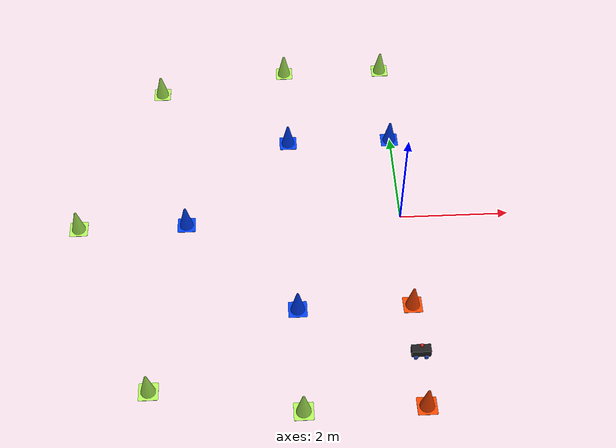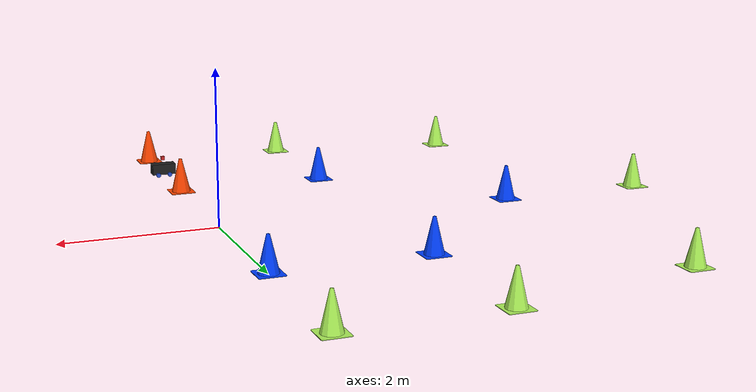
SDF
<sdf version="1.7">
 <world name="obstacles.world">
  <model name="my_bot">
   <link name="base_link">
    <inertial>
     <pose>0.078466 -0.000667 0.041672 0 -0 0</pose>
     <mass>0.90002</mass>
     <inertia>
      <ixx>0.00658185</ixx>
      <ixy>-0.000163557</ixy>
      <ixz>2.47327e-05</ixz>
      <iyy>0.0100854</iyy>
      <iyz>-2.49866e-05</iyz>
      <izz>0.0118767</izz>
     </inertia>
    </inertial>
    <collision name="base_link_fixed_joint_lump__back_left_wheel_collision">
     <pose>0 0.085 0 -1.5708 0 0</pose>
     <geometry><cylinder><length>0.03</length><radius>0.032</radius></cylinder></geometry>
     <surface><friction><ode><mu>0.018</mu><mu2>0.018</mu2></ode></friction></surface>
    </collision>
    <collision name="base_link_fixed_joint_lump__back_right_wheel_collision_1">
     <pose>-0.0128 -0.091 0 1.5708 -0 0</pose>
     <geometry><cylinder><length>0.03</length><radius>0.032</radius></cylinder></geometry>
     <surface><friction><ode><mu>0.018</mu><mu2>0.018</mu2></ode></friction></surface>
    </collision>
    <collision name="base_link_fixed_joint_lump__camera_link_collision_2">
     <pose>0.16 -0.004 0.4572 0 -0 0</pose>
     <geometry><box><size>0.05 0.05 0.05</size></box></geometry>
    </collision>
    <collision name="base_link_fixed_joint_lump__chassis_collision_3">
     <pose>0.0778 0 0.075 0 -0 0</pose>
     <geometry><box><size>0.3302 0.1524 0.15</size></box></geometry>
    </collision>
    <collision name="base_link_fixed_joint_lump__front_left_wheel_collision_4">
     <pose>0.165 0.091 0 -1.5708 0 0</pose>
     <geometry><cylinder><length>0.03</length><radius>0.032</radius></cylinder></geometry>
     <surface><friction><ode><mu>0.018</mu><mu2>0.018</mu2></ode></friction></surface>
    </collision>
    <collision name="base_link_fixed_joint_lump__front_right_wheel_collision_5">
     <pose>0.165 -0.091 0 1.5708 -0 0</pose>
     <geometry><cylinder><length>0.03</length><radius>0.032</radius></cylinder></geometry>
     <surface><friction><ode><mu>0.018</mu><mu2>0.018</mu2></ode></friction></surface>
    </collision>
    <collision name="base_link_fixed_joint_lump__laser_frame_collision_6">
     <pose>-0.02 0 0.1143 0 -0 0</pose>
     <geometry><box><size>0.1 0.1 0.1</size></box></geometry>
    </collision>
    <visual name="base_link_fixed_joint_lump__back_left_wheel_visual">
     <pose>0 0.085 0 -1.5708 0 0</pose>
     <geometry><cylinder><length>0.03</length><radius>0.032</radius></cylinder></geometry>
     <material>
      <script><name>Gazebo/Blue</name><uri>file://media/materials/scripts/gazebo.material</uri></script>
     </material>
    </visual>
    <visual name="base_link_fixed_joint_lump__back_right_wheel_visual_1">
     <pose>-0.0128 -0.091 0 1.5708 -0 0</pose>
     <geometry><cylinder><length>0.03</length><radius>0.032</radius></cylinder></geometry>
     <material>
      <script><name>Gazebo/Blue</name><uri>file://media/materials/scripts/gazebo.material</uri></script>
     </material>
    </visual>
    <visual name="base_link_fixed_joint_lump__camera_link_visual_2">
     <pose>0.08 -0.002 0.2286 0 -0 0</pose>
     <geometry><box><size>0.05 0.05 0.05</size></box></geometry>
     <material>
      <script><name>Gazebo/Red</name><uri>file://media/materials/scripts/gazebo.material</uri></script>
     </material>
    </visual>
    <visual name="base_link_fixed_joint_lump__chassis_visual_3">
     <pose>0.0778 0 0.075 0 -0 0</pose>
     <geometry><box><size>0.3302 0.1524 0.15</size></box></geometry>
     <material>
      <script><name>Gazebo/Black</name><uri>file://media/materials/scripts/gazebo.material</uri></script>
     </material>
    </visual>
    <visual name="base_link_fixed_joint_lump__front_left_wheel_visual_4">
     <pose>0.165 0.091 0 -1.5708 0 0</pose>
     <geometry><cylinder><length>0.03</length><radius>0.032</radius></cylinder></geometry>
     <material>
      <script><name>Gazebo/Blue</name><uri>file://media/materials/scripts/gazebo.material</uri></script>
     </material>
    </visual>
    <visual name="base_link_fixed_joint_lump__front_right_wheel_visual_5">
     <pose>0.165 -0.091 0 1.5708 -0 0</pose>
     <geometry><cylinder><length>0.03</length><radius>0.032</radius></cylinder></geometry>
     <material>
      <script><name>Gazebo/Blue</name><uri>file://media/materials/scripts/gazebo.material</uri></script>
     </material>
    </visual>
    <visual name="base_link_fixed_joint_lump__laser_frame_visual_6">
     <pose>-0.02 0 0.1143 0 -0 0</pose>
     <geometry><box><size>0.06 0.05 0.05</size></box></geometry>
    </visual>
    <sensor name="camera1" type="camera">
     <update_rate>30</update_rate>
     <camera name="head">
      <horizontal_fov>1.0856</horizontal_fov>
      <image><width>3280</width><height>2464</height><format>R8G8B8</format></image>
      <clip><near>0.02</near><far>300</far></clip>
      <noise><type>gaussian</type><mean>0</mean><stddev>0.007</stddev></noise>
     </camera>
     <plugin name="camera_controller" filename="libgazebo_ros_camera.so">
      <alwaysOn>1</alwaysOn>
      <updateRate>0.0</updateRate>
      <cameraName>camera1</cameraName>
      <imageTopicName>image_raw</imageTopicName>
      <cameraInfoTopicName>camera_info</cameraInfoTopicName>
      <frameName>camera_link</frameName>
      <hackBaseline>0.07</hackBaseline>
      <distortionK1>0.0</distortionK1>
      <distortionK2>0.0</distortionK2>
      <distortionK3>0.0</distortionK3>
      <distortionT1>0.0</distortionT1>
      <distortionT2>0.0</distortionT2>
     </plugin>
     <pose>0.08 -0.002 0.2286 0 -0 0</pose>
    </sensor>
    <sensor name="laser" type="ray">
     <visualize>1</visualize>
     <update_rate>10</update_rate>
     <ray>
      <scan>
       <horizontal>
        <samples>90</samples>
        <resolution>10</resolution>
        <min_angle>-1.5708</min_angle>
        <max_angle>1.5708</max_angle>
       </horizontal>
       <vertical><samples>1</samples><min_angle>0</min_angle><max_angle>0</max_angle></vertical>
      </scan>
      <range><min>0.3</min><max>5</max><resolution>0.01</resolution></range>
     </ray>
     <plugin name="laser_controller" filename="libgazebo_ros_ray_sensor.so">
      <ros><argument>~/out:=scan</argument></ros>
      <output_type>sensor_msgs/LaserScan</output_type>
      <frame_name>laser_frame</frame_name>
     </plugin>
     <pose>-0.02 0 0.1143 0 -0 0</pose>
    </sensor>
   </link>
   <static>0</static>
   <plugin name="object_controller" filename="libgazebo_ros_planar_move.so">
    <commandTopic>cmd_vel</commandTopic>
    <odometryTopic>odom</odometryTopic>
    <odometryFrame>odom</odometryFrame>
    <odometryRate>20.0</odometryRate>
    <robot_base_frame>base_link</robot_base_frame>
   </plugin>
   <pose>-0.073031 -2.99741 0.032 0 -0 0.001205</pose>
  </model>
  <model name="blue_cone">
   <link name="link">
    <inertial>
     <pose>0 0.1 0 0 -0 0</pose>
     <mass>1</mass>
     <inertia><ixx>0.1</ixx><iyy>0.1</iyy><izz>0</izz><ixy>0</ixy><ixz>0</ixz><iyz>0</iyz></inertia>
    </inertial>
    <pose>-0.104311 -0.990632 5.9e-05 0 -0 0</pose>
    <visual name="visual">
     <geometry><mesh><scale>1 1 1</scale><uri>file://model.dae</uri></mesh></geometry>
     <material>
      <shader type="pixel"><normal_map>__default__</normal_map></shader>
      <script><name>ModelPreview_1::link::visual_MATERIAL_</name><uri>__default__</uri></script>
      <ambient>0 0.251 1 0</ambient>
      <diffuse>0 0.251 1 1</diffuse>
      <specular>0 0 0 1</specular>
      <emissive>0 0 0 1</emissive>
     </material>
    </visual>
    <collision name="collision">
     <geometry>
      <mesh>
       <uri>/home/josh/robot_ws/src/open-source-autonomous-vehicle-controller/car_ros/worlds/model.dae</uri>
       <scale>1 1 1</scale>
      </mesh>
     </geometry>
     <surface>
      <friction>
       <ode><mu>1</mu><mu2>1</mu2><fdir1>0 0 0</fdir1><slip1>0</slip1><slip2>0</slip2></ode>
       <torsional>
        <coefficient>1</coefficient>
        <patch_radius>0</patch_radius>
        <surface_radius>0</surface_radius>
        <use_patch_radius>1</use_patch_radius>
        <ode><slip>0</slip></ode>
       </torsional>
      </friction>
      <bounce><restitution_coefficient>0</restitution_coefficient><threshold>1e+06</threshold></bounce>
      <contact>
       <collide_without_contact>0</collide_without_contact>
       <collide_without_contact_bitmask>1</collide_without_contact_bitmask>
       <collide_bitmask>1</collide_bitmask>
       <ode>
        <soft_cfm>0</soft_cfm>
        <soft_erp>0.2</soft_erp>
        <kp>1e+13</kp>
        <kd>1</kd>
        <max_vel>0.01</max_vel>
        <min_depth>0</min_depth>
       </ode>
       <bullet>
        <split_impulse>1</split_impulse>
        <split_impulse_penetration_threshold>-0.01</split_impulse_penetration_threshold>
        <soft_cfm>0</soft_cfm>
        <soft_erp>0.2</soft_erp>
        <kp>1e+13</kp>
        <kd>1</kd>
       </bullet>
      </contact>
     </surface>
    </collision>
    <static>1</static>
   </link>
   <static>0</static>
   <pose>-2.07352 -1.16585 -1e-06 -1e-06 -0.000562 0</pose>
  </model>
  <model name="blue_cone_clone_1">
   <link name="link">
    <inertial>
     <pose>0 0.1 0 0 -0 0</pose>
     <mass>1</mass>
     <inertia><ixx>0.1</ixx><iyy>0.1</iyy><izz>0</izz><ixy>0</ixy><ixz>0</ixz><iyz>0</iyz></inertia>
    </inertial>
    <pose>-0.104311 -0.990632 5.9e-05 0 -0 0</pose>
    <visual name="visual">
     <geometry><mesh><scale>1 1 1</scale><uri>file://model.dae</uri></mesh></geometry>
     <material>
      <shader type="pixel"><normal_map>__default__</normal_map></shader>
      <script><name>ModelPreview_1::link::visual_MATERIAL_</name><uri>__default__</uri></script>
      <ambient>0 0.251 1 0</ambient>
      <diffuse>0 0.251 1 1</diffuse>
      <specular>0 0 0 1</specular>
      <emissive>0 0 0 1</emissive>
     </material>
    </visual>
    <collision name="collision">
     <geometry>
      <mesh>
       <uri>/home/josh/robot_ws/src/open-source-autonomous-vehicle-controller/car_ros/worlds/model.dae</uri>
       <scale>1 1 1</scale>
      </mesh>
     </geometry>
     <surface>
      <friction>
       <ode><mu>1</mu><mu2>1</mu2><fdir1>0 0 0</fdir1><slip1>0</slip1><slip2>0</slip2></ode>
       <torsional>
        <coefficient>1</coefficient>
        <patch_radius>0</patch_radius>
        <surface_radius>0</surface_radius>
        <use_patch_radius>1</use_patch_radius>
        <ode><slip>0</slip></ode>
       </torsional>
      </friction>
      <bounce><restitution_coefficient>0</restitution_coefficient><threshold>1e+06</threshold></bounce>
      <contact>
       <collide_without_contact>0</collide_without_contact>
       <collide_without_contact_bitmask>1</collide_without_contact_bitmask>
       <collide_bitmask>1</collide_bitmask>
       <ode>
        <soft_cfm>0</soft_cfm>
        <soft_erp>0.2</soft_erp>
        <kp>1e+13</kp>
        <kd>1</kd>
        <max_vel>0.01</max_vel>
        <min_depth>0</min_depth>
       </ode>
       <bullet>
        <split_impulse>1</split_impulse>
        <split_impulse_penetration_threshold>-0.01</split_impulse_penetration_threshold>
        <soft_cfm>0</soft_cfm>
        <soft_erp>0.2</soft_erp>
        <kp>1e+13</kp>
        <kd>1</kd>
       </bullet>
      </contact>
     </surface>
    </collision>
    <static>1</static>
   </link>
   <static>0</static>
   <pose>-4.03429 0.82383 -2e-06 -1e-06 -0.000562 0</pose>
  </model>
  <model name="blue_cone_clone_2">
   <link name="link">
    <inertial>
     <pose>0 0.1 0 0 -0 0</pose>
     <mass>1</mass>
     <inertia><ixx>0.1</ixx><iyy>0.1</iyy><izz>0</izz><ixy>0</ixy><ixz>0</ixz><iyz>0</iyz></inertia>
    </inertial>
    <pose>-0.104311 -0.990632 5.9e-05 0 -0 0</pose>
    <visual name="visual">
     <geometry><mesh><scale>1 1 1</scale><uri>file://model.dae</uri></mesh></geometry>
     <material>
      <shader type="pixel"><normal_map>__default__</normal_map></shader>
      <script><name>ModelPreview_1::link::visual_MATERIAL_</name><uri>__default__</uri></script>
      <ambient>0 0.251 1 0</ambient>
      <diffuse>0 0.251 1 1</diffuse>
      <specular>0 0 0 1</specular>
      <emissive>0 0 0 1</emissive>
     </material>
    </visual>
    <collision name="collision">
     <geometry>
      <mesh>
       <uri>/home/josh/robot_ws/src/open-source-autonomous-vehicle-controller/car_ros/worlds/model.dae</uri>
       <scale>1 1 1</scale>
      </mesh>
     </geometry>
     <surface>
      <friction>
       <ode><mu>1</mu><mu2>1</mu2><fdir1>0 0 0</fdir1><slip1>0</slip1><slip2>0</slip2></ode>
       <torsional>
        <coefficient>1</coefficient>
        <patch_radius>0</patch_radius>
        <surface_radius>0</surface_radius>
        <use_patch_radius>1</use_patch_radius>
        <ode><slip>0</slip></ode>
       </torsional>
      </friction>
      <bounce><restitution_coefficient>0</restitution_coefficient><threshold>1e+06</threshold></bounce>
      <contact>
       <collide_without_contact>0</collide_without_contact>
       <collide_without_contact_bitmask>1</collide_without_contact_bitmask>
       <collide_bitmask>1</collide_bitmask>
       <ode>
        <soft_cfm>0</soft_cfm>
        <soft_erp>0.2</soft_erp>
        <kp>1e+13</kp>
        <kd>1</kd>
        <max_vel>0.01</max_vel>
        <min_depth>0</min_depth>
       </ode>
       <bullet>
        <split_impulse>1</split_impulse>
        <split_impulse_penetration_threshold>-0.01</split_impulse_penetration_threshold>
        <soft_cfm>0</soft_cfm>
        <soft_erp>0.2</soft_erp>
        <kp>1e+13</kp>
        <kd>1</kd>
       </bullet>
      </contact>
     </surface>
    </collision>
    <static>1</static>
   </link>
   <static>0</static>
   <pose>-2.07352 2.82004 -1e-05 1e-06 -0.000562 -0</pose>
  </model>
  <model name="blue_cone_clone_2_clone">
   <link name="link">
    <inertial>
     <pose>0 0.1 0 0 -0 0</pose>
     <mass>1</mass>
     <inertia><ixx>0.1</ixx><iyy>0.1</iyy><izz>0</izz><ixy>0</ixy><ixz>0</ixz><iyz>0</iyz></inertia>
    </inertial>
    <pose>-0.104311 -0.990632 5.9e-05 0 -0 0</pose>
    <visual name="visual">
     <geometry><mesh><scale>1 1 1</scale><uri>file://model.dae</uri></mesh></geometry>
     <material>
      <shader type="pixel"><normal_map>__default__</normal_map></shader>
      <script><name>ModelPreview_1::link::visual_MATERIAL_</name><uri>__default__</uri></script>
      <ambient>0 0.251 1 0</ambient>
      <diffuse>0 0.251 1 1</diffuse>
      <specular>0 0 0 1</specular>
      <emissive>0 0 0 1</emissive>
     </material>
    </visual>
    <collision name="collision">
     <geometry>
      <mesh>
       <uri>/home/josh/robot_ws/src/open-source-autonomous-vehicle-controller/car_ros/worlds/model.dae</uri>
       <scale>1 1 1</scale>
      </mesh>
     </geometry>
     <surface>
      <friction>
       <ode><mu>1</mu><mu2>1</mu2><fdir1>0 0 0</fdir1><slip1>0</slip1><slip2>0</slip2></ode>
       <torsional>
        <coefficient>1</coefficient>
        <patch_radius>0</patch_radius>
        <surface_radius>0</surface_radius>
        <use_patch_radius>1</use_patch_radius>
        <ode><slip>0</slip></ode>
       </torsional>
      </friction>
      <bounce><restitution_coefficient>0</restitution_coefficient><threshold>1e+06</threshold></bounce>
      <contact>
       <collide_without_contact>0</collide_without_contact>
       <collide_without_contact_bitmask>1</collide_without_contact_bitmask>
       <collide_bitmask>1</collide_bitmask>
       <ode>
        <soft_cfm>0</soft_cfm>
        <soft_erp>0.2</soft_erp>
        <kp>1e+13</kp>
        <kd>1</kd>
        <max_vel>0.01</max_vel>
        <min_depth>0</min_depth>
       </ode>
       <bullet>
        <split_impulse>1</split_impulse>
        <split_impulse_penetration_threshold>-0.01</split_impulse_penetration_threshold>
        <soft_cfm>0</soft_cfm>
        <soft_erp>0.2</soft_erp>
        <kp>1e+13</kp>
        <kd>1</kd>
       </bullet>
      </contact>
     </surface>
    </collision>
    <static>1</static>
   </link>
   <static>0</static>
   <pose>-0.071507 2.82004 -1e-06 -1e-06 -0.000562 0</pose>
  </model>
  <model name="orange_cone">
   <link name="link">
    <inertial>
     <pose>0 0.1 0 0 -0 0</pose>
     <mass>1</mass>
     <inertia><ixx>0.1</ixx><iyy>0.1</iyy><izz>0</izz><ixy>0</ixy><ixz>0</ixz><iyz>0</iyz></inertia>
    </inertial>
    <pose>-0.104311 -0.990632 5.9e-05 0 -0 0</pose>
    <visual name="visual">
     <geometry><mesh><scale>1 1 1</scale><uri>file://model.dae</uri></mesh></geometry>
     <material>
      <shader type="pixel"><normal_map>__default__</normal_map></shader>
      <script><name>ModelPreview_1::link::visual_MATERIAL_</name><uri>__default__</uri></script>
      <ambient>1 0.271 0 0</ambient>
      <diffuse>1 0.271 0 1</diffuse>
      <specular>0 0 0 1</specular>
      <emissive>0 0 0 1</emissive>
     </material>
    </visual>
    <collision name="collision">
     <geometry>
      <mesh>
       <uri>/home/josh/robot_ws/src/open-source-autonomous-vehicle-controller/car_ros/worlds/model.dae</uri>
       <scale>1 1 1</scale>
      </mesh>
     </geometry>
     <surface>
      <friction>
       <ode><mu>1</mu><mu2>1</mu2><fdir1>0 0 0</fdir1><slip1>0</slip1><slip2>0</slip2></ode>
       <torsional>
        <coefficient>1</coefficient>
        <patch_radius>0</patch_radius>
        <surface_radius>0</surface_radius>
        <use_patch_radius>1</use_patch_radius>
        <ode><slip>0</slip></ode>
       </torsional>
      </friction>
      <bounce><restitution_coefficient>0</restitution_coefficient><threshold>1e+06</threshold></bounce>
      <contact>
       <collide_without_contact>0</collide_without_contact>
       <collide_without_contact_bitmask>1</collide_without_contact_bitmask>
       <collide_bitmask>1</collide_bitmask>
       <ode>
        <soft_cfm>0</soft_cfm>
        <soft_erp>0.2</soft_erp>
        <kp>1e+13</kp>
        <kd>1</kd>
        <max_vel>0.01</max_vel>
        <min_depth>0</min_depth>
       </ode>
       <bullet>
        <split_impulse>1</split_impulse>
        <split_impulse_penetration_threshold>-0.01</split_impulse_penetration_threshold>
        <soft_cfm>0</soft_cfm>
        <soft_erp>0.2</soft_erp>
        <kp>1e+13</kp>
        <kd>1</kd>
       </bullet>
      </contact>
     </surface>
    </collision>
    <static>1</static>
   </link>
   <static>0</static>
   <pose>-0.071507 -1.16585 -1e-06 -1e-06 -0.000562 0</pose>
  </model>
  <model name="orange_cone_0">
   <link name="link">
    <inertial>
     <pose>0 0.1 0 0 -0 0</pose>
     <mass>1</mass>
     <inertia><ixx>0.1</ixx><iyy>0.1</iyy><izz>0</izz><ixy>0</ixy><ixz>0</ixz><iyz>0</iyz></inertia>
    </inertial>
    <pose>-0.104311 -0.990632 5.9e-05 0 -0 0</pose>
    <visual name="visual">
     <geometry><mesh><scale>1 1 1</scale><uri>file://model.dae</uri></mesh></geometry>
     <material>
      <shader type="pixel"><normal_map>__default__</normal_map></shader>
      <script><name>ModelPreview_1::link::visual_MATERIAL_</name><uri>__default__</uri></script>
      <ambient>1 0.271 0 0</ambient>
      <diffuse>1 0.271 0 1</diffuse>
      <specular>0 0 0 1</specular>
      <emissive>0 0 0 1</emissive>
     </material>
    </visual>
    <collision name="collision">
     <geometry>
      <mesh>
       <uri>/home/josh/robot_ws/src/open-source-autonomous-vehicle-controller/car_ros/worlds/model.dae</uri>
       <scale>1 1 1</scale>
      </mesh>
     </geometry>
     <surface>
      <friction>
       <ode><mu>1</mu><mu2>1</mu2><fdir1>0 0 0</fdir1><slip1>0</slip1><slip2>0</slip2></ode>
       <torsional>
        <coefficient>1</coefficient>
        <patch_radius>0</patch_radius>
        <surface_radius>0</surface_radius>
        <use_patch_radius>1</use_patch_radius>
        <ode><slip>0</slip></ode>
       </torsional>
      </friction>
      <bounce><restitution_coefficient>0</restitution_coefficient><threshold>1e+06</threshold></bounce>
      <contact>
       <collide_without_contact>0</collide_without_contact>
       <collide_without_contact_bitmask>1</collide_without_contact_bitmask>
       <collide_bitmask>1</collide_bitmask>
       <ode>
        <soft_cfm>0</soft_cfm>
        <soft_erp>0.2</soft_erp>
        <kp>1e+13</kp>
        <kd>1</kd>
        <max_vel>0.01</max_vel>
        <min_depth>0</min_depth>
       </ode>
       <bullet>
        <split_impulse>1</split_impulse>
        <split_impulse_penetration_threshold>-0.01</split_impulse_penetration_threshold>
        <soft_cfm>0</soft_cfm>
        <soft_erp>0.2</soft_erp>
        <kp>1e+13</kp>
        <kd>1</kd>
       </bullet>
      </contact>
     </surface>
    </collision>
    <static>1</static>
   </link>
   <static>0</static>
   <pose>-0.071084 -3.16035 0.000184 0 -0.002413 0</pose>
  </model>
  <model name="neon_cone_0">
   <link name="link">
    <inertial>
     <pose>0 0.1 0 0 -0 0</pose>
     <mass>1</mass>
     <inertia><ixx>0.1</ixx><iyy>0.1</iyy><izz>0</izz><ixy>0</ixy><ixz>0</ixz><iyz>0</iyz></inertia>
    </inertial>
    <pose>-0.104311 -0.990632 5.9e-05 0 -0 0</pose>
    <visual name="visual">
     <geometry><mesh><scale>1 1 1</scale><uri>file://model.dae</uri></mesh></geometry>
     <material>
      <shader type="pixel"><normal_map>__default__</normal_map></shader>
      <script><name>ModelPreview_1::link::visual_MATERIAL_</name><uri>__default__</uri></script>
      <ambient>0.682 0.953 0.349 0</ambient>
      <diffuse>0.682 0.953 0.349 1</diffuse>
      <specular>0 0 0 1</specular>
      <emissive>0 0 0 1</emissive>
     </material>
    </visual>
    <collision name="collision">
     <geometry>
      <mesh>
       <uri>/home/josh/robot_ws/src/open-source-autonomous-vehicle-controller/car_ros/worlds/model.dae</uri>
       <scale>1 1 1</scale>
      </mesh>
     </geometry>
     <surface>
      <friction>
       <ode><mu>1</mu><mu2>1</mu2><fdir1>0 0 0</fdir1><slip1>0</slip1><slip2>0</slip2></ode>
       <torsional>
        <coefficient>1</coefficient>
        <patch_radius>0</patch_radius>
        <surface_radius>0</surface_radius>
        <use_patch_radius>1</use_patch_radius>
        <ode><slip>0</slip></ode>
       </torsional>
      </friction>
      <bounce><restitution_coefficient>0</restitution_coefficient><threshold>1e+06</threshold></bounce>
      <contact>
       <collide_without_contact>0</collide_without_contact>
       <collide_without_contact_bitmask>1</collide_without_contact_bitmask>
       <collide_bitmask>1</collide_bitmask>
       <ode>
        <soft_cfm>0</soft_cfm>
        <soft_erp>0.2</soft_erp>
        <kp>1e+13</kp>
        <kd>1</kd>
        <max_vel>0.01</max_vel>
        <min_depth>0</min_depth>
       </ode>
       <bullet>
        <split_impulse>1</split_impulse>
        <split_impulse_penetration_threshold>-0.01</split_impulse_penetration_threshold>
        <soft_cfm>0</soft_cfm>
        <soft_erp>0.2</soft_erp>
        <kp>1e+13</kp>
        <kd>1</kd>
       </bullet>
      </contact>
     </surface>
    </collision>
    <static>1</static>
   </link>
   <static>0</static>
   <pose>-2.07309 -3.16035 0.000184 0 -0.002415 0</pose>
  </model>
  <model name="neon_cone_1">
   <link name="link">
    <inertial>
     <pose>0 0.1 0 0 -0 0</pose>
     <mass>1</mass>
     <inertia><ixx>0.1</ixx><iyy>0.1</iyy><izz>0</izz><ixy>0</ixy><ixz>0</ixz><iyz>0</iyz></inertia>
    </inertial>
    <pose>-0.104311 -0.990632 5.9e-05 0 -0 0</pose>
    <visual name="visual">
     <geometry><mesh><scale>1 1 1</scale><uri>file://model.dae</uri></mesh></geometry>
     <material>
      <shader type="pixel"><normal_map>__default__</normal_map></shader>
      <script><name>ModelPreview_1::link::visual_MATERIAL_</name><uri>__default__</uri></script>
      <ambient>0.682 0.953 0.349 0</ambient>
      <diffuse>0.682 0.953 0.349 1</diffuse>
      <specular>0 0 0 1</specular>
      <emissive>0 0 0 1</emissive>
     </material>
    </visual>
    <collision name="collision">
     <geometry>
      <mesh>
       <uri>/home/josh/robot_ws/src/open-source-autonomous-vehicle-controller/car_ros/worlds/model.dae</uri>
       <scale>1 1 1</scale>
      </mesh>
     </geometry>
     <surface>
      <friction>
       <ode><mu>1</mu><mu2>1</mu2><fdir1>0 0 0</fdir1><slip1>0</slip1><slip2>0</slip2></ode>
       <torsional>
        <coefficient>1</coefficient>
        <patch_radius>0</patch_radius>
        <surface_radius>0</surface_radius>
        <use_patch_radius>1</use_patch_radius>
        <ode><slip>0</slip></ode>
       </torsional>
      </friction>
      <bounce><restitution_coefficient>0</restitution_coefficient><threshold>1e+06</threshold></bounce>
      <contact>
       <collide_without_contact>0</collide_without_contact>
       <collide_without_contact_bitmask>1</collide_without_contact_bitmask>
       <collide_bitmask>1</collide_bitmask>
       <ode>
        <soft_cfm>0</soft_cfm>
        <soft_erp>0.2</soft_erp>
        <kp>1e+13</kp>
        <kd>1</kd>
        <max_vel>0.01</max_vel>
        <min_depth>0</min_depth>
       </ode>
       <bullet>
        <split_impulse>1</split_impulse>
        <split_impulse_penetration_threshold>-0.01</split_impulse_penetration_threshold>
        <soft_cfm>0</soft_cfm>
        <soft_erp>0.2</soft_erp>
        <kp>1e+13</kp>
        <kd>1</kd>
       </bullet>
      </contact>
     </surface>
    </collision>
    <static>1</static>
   </link>
   <static>0</static>
   <pose>-4.59402 -2.67486 0.000192 0 -0.002415 0</pose>
  </model>
  <model name="neon_cone_2">
   <link name="link">
    <inertial>
     <pose>0 0.1 0 0 -0 0</pose>
     <mass>1</mass>
     <inertia><ixx>0.1</ixx><iyy>0.1</iyy><izz>0</izz><ixy>0</ixy><ixz>0</ixz><iyz>0</iyz></inertia>
    </inertial>
    <pose>-0.104311 -0.990632 5.9e-05 0 -0 0</pose>
    <visual name="visual">
     <geometry><mesh><scale>1 1 1</scale><uri>file://model.dae</uri></mesh></geometry>
     <material>
      <shader type="pixel"><normal_map>__default__</normal_map></shader>
      <script><name>ModelPreview_1::link::visual_MATERIAL_</name><uri>__default__</uri></script>
      <ambient>0.682 0.953 0.349 0</ambient>
      <diffuse>0.682 0.953 0.349 1</diffuse>
      <specular>0 0 0 1</specular>
      <emissive>0 0 0 1</emissive>
     </material>
    </visual>
    <collision name="collision">
     <geometry>
      <mesh>
       <uri>/home/josh/robot_ws/src/open-source-autonomous-vehicle-controller/car_ros/worlds/model.dae</uri>
       <scale>1 1 1</scale>
      </mesh>
     </geometry>
     <surface>
      <friction>
       <ode><mu>1</mu><mu2>1</mu2><fdir1>0 0 0</fdir1><slip1>0</slip1><slip2>0</slip2></ode>
       <torsional>
        <coefficient>1</coefficient>
        <patch_radius>0</patch_radius>
        <surface_radius>0</surface_radius>
        <use_patch_radius>1</use_patch_radius>
        <ode><slip>0</slip></ode>
       </torsional>
      </friction>
      <bounce><restitution_coefficient>0</restitution_coefficient><threshold>1e+06</threshold></bounce>
      <contact>
       <collide_without_contact>0</collide_without_contact>
       <collide_without_contact_bitmask>1</collide_without_contact_bitmask>
       <collide_bitmask>1</collide_bitmask>
       <ode>
        <soft_cfm>0</soft_cfm>
        <soft_erp>0.2</soft_erp>
        <kp>1e+13</kp>
        <kd>1</kd>
        <max_vel>0.01</max_vel>
        <min_depth>0</min_depth>
       </ode>
       <bullet>
        <split_impulse>1</split_impulse>
        <split_impulse_penetration_threshold>-0.01</split_impulse_penetration_threshold>
        <soft_cfm>0</soft_cfm>
        <soft_erp>0.2</soft_erp>
        <kp>1e+13</kp>
        <kd>1</kd>
       </bullet>
      </contact>
     </surface>
    </collision>
    <static>1</static>
   </link>
   <static>0</static>
   <pose>-6.01636 0.82383 0.000192 0 -0.002415 0</pose>
  </model>
  <model name="neon_cone_3">
   <link name="link">
    <inertial>
     <pose>0 0.1 0 0 -0 0</pose>
     <mass>1</mass>
     <inertia><ixx>0.1</ixx><iyy>0.1</iyy><izz>0</izz><ixy>0</ixy><ixz>0</ixz><iyz>0</iyz></inertia>
    </inertial>
    <pose>-0.104311 -0.990632 5.9e-05 0 -0 0</pose>
    <visual name="visual">
     <geometry><mesh><scale>1 1 1</scale><uri>file://model.dae</uri></mesh></geometry>
     <material>
      <shader type="pixel"><normal_map>__default__</normal_map></shader>
      <script><name>ModelPreview_1::link::visual_MATERIAL_</name><uri>__default__</uri></script>
      <ambient>0.682 0.953 0.349 0</ambient>
      <diffuse>0.682 0.953 0.349 1</diffuse>
      <specular>0 0 0 1</specular>
      <emissive>0 0 0 1</emissive>
     </material>
    </visual>
    <collision name="collision">
     <geometry>
      <mesh>
       <uri>/home/josh/robot_ws/src/open-source-autonomous-vehicle-controller/car_ros/worlds/model.dae</uri>
       <scale>1 1 1</scale>
      </mesh>
     </geometry>
     <surface>
      <friction>
       <ode><mu>1</mu><mu2>1</mu2><fdir1>0 0 0</fdir1><slip1>0</slip1><slip2>0</slip2></ode>
       <torsional>
        <coefficient>1</coefficient>
        <patch_radius>0</patch_radius>
        <surface_radius>0</surface_radius>
        <use_patch_radius>1</use_patch_radius>
        <ode><slip>0</slip></ode>
       </torsional>
      </friction>
      <bounce><restitution_coefficient>0</restitution_coefficient><threshold>1e+06</threshold></bounce>
      <contact>
       <collide_without_contact>0</collide_without_contact>
       <collide_without_contact_bitmask>1</collide_without_contact_bitmask>
       <collide_bitmask>1</collide_bitmask>
       <ode>
        <soft_cfm>0</soft_cfm>
        <soft_erp>0.2</soft_erp>
        <kp>1e+13</kp>
        <kd>1</kd>
        <max_vel>0.01</max_vel>
        <min_depth>0</min_depth>
       </ode>
       <bullet>
        <split_impulse>1</split_impulse>
        <split_impulse_penetration_threshold>-0.01</split_impulse_penetration_threshold>
        <soft_cfm>0</soft_cfm>
        <soft_erp>0.2</soft_erp>
        <kp>1e+13</kp>
        <kd>1</kd>
       </bullet>
      </contact>
     </surface>
    </collision>
    <static>1</static>
   </link>
   <static>0</static>
   <pose>-4.59402 4.33364 0.000184 0 -0.002415 0</pose>
  </model>
  <model name="neon_cone_4">
   <link name="link">
    <inertial>
     <pose>0 0.1 0 0 -0 0</pose>
     <mass>1</mass>
     <inertia><ixx>0.1</ixx><iyy>0.1</iyy><izz>0</izz><ixy>0</ixy><ixz>0</ixz><iyz>0</iyz></inertia>
    </inertial>
    <pose>-0.104311 -0.990632 5.9e-05 0 -0 0</pose>
    <visual name="visual">
     <geometry><mesh><scale>1 1 1</scale><uri>file://model.dae</uri></mesh></geometry>
     <material>
      <shader type="pixel"><normal_map>__default__</normal_map></shader>
      <script><name>ModelPreview_1::link::visual_MATERIAL_</name><uri>__default__</uri></script>
      <ambient>0.682 0.953 0.349 0</ambient>
      <diffuse>0.682 0.953 0.349 1</diffuse>
      <specular>0 0 0 1</specular>
      <emissive>0 0 0 1</emissive>
     </material>
    </visual>
    <collision name="collision">
     <geometry>
      <mesh>
       <uri>/home/josh/robot_ws/src/open-source-autonomous-vehicle-controller/car_ros/worlds/model.dae</uri>
       <scale>1 1 1</scale>
      </mesh>
     </geometry>
     <surface>
      <friction>
       <ode><mu>1</mu><mu2>1</mu2><fdir1>0 0 0</fdir1><slip1>0</slip1><slip2>0</slip2></ode>
       <torsional>
        <coefficient>1</coefficient>
        <patch_radius>0</patch_radius>
        <surface_radius>0</surface_radius>
        <use_patch_radius>1</use_patch_radius>
        <ode><slip>0</slip></ode>
       </torsional>
      </friction>
      <bounce><restitution_coefficient>0</restitution_coefficient><threshold>1e+06</threshold></bounce>
      <contact>
       <collide_without_contact>0</collide_without_contact>
       <collide_without_contact_bitmask>1</collide_without_contact_bitmask>
       <collide_bitmask>1</collide_bitmask>
       <ode>
        <soft_cfm>0</soft_cfm>
        <soft_erp>0.2</soft_erp>
        <kp>1e+13</kp>
        <kd>1</kd>
        <max_vel>0.01</max_vel>
        <min_depth>0</min_depth>
       </ode>
       <bullet>
        <split_impulse>1</split_impulse>
        <split_impulse_penetration_threshold>-0.01</split_impulse_penetration_threshold>
        <soft_cfm>0</soft_cfm>
        <soft_erp>0.2</soft_erp>
        <kp>1e+13</kp>
        <kd>1</kd>
       </bullet>
      </contact>
     </surface>
    </collision>
    <static>1</static>
   </link>
   <static>0</static>
   <pose>-2.07309 4.8426 0.000192 0 -0.002415 0</pose>
  </model>
  <model name="neon_cone_5">
   <link name="link">
    <inertial>
     <pose>0 0.1 0 0 -0 0</pose>
     <mass>1</mass>
     <inertia><ixx>0.1</ixx><iyy>0.1</iyy><izz>0</izz><ixy>0</ixy><ixz>0</ixz><iyz>0</iyz></inertia>
    </inertial>
    <pose>-0.104311 -0.990632 5.9e-05 0 -0 0</pose>
    <visual name="visual">
     <geometry><mesh><scale>1 1 1</scale><uri>file://model.dae</uri></mesh></geometry>
     <material>
      <shader type="pixel"><normal_map>__default__</normal_map></shader>
      <script><name>ModelPreview_1::link::visual_MATERIAL_</name><uri>__default__</uri></script>
      <ambient>0.682 0.953 0.349 0</ambient>
      <diffuse>0.682 0.953 0.349 1</diffuse>
      <specular>0 0 0 1</specular>
      <emissive>0 0 0 1</emissive>
     </material>
    </visual>
    <collision name="collision">
     <geometry>
      <mesh>
       <uri>/home/josh/robot_ws/src/open-source-autonomous-vehicle-controller/car_ros/worlds/model.dae</uri>
       <scale>1 1 1</scale>
      </mesh>
     </geometry>
     <surface>
      <friction>
       <ode><mu>1</mu><mu2>1</mu2><fdir1>0 0 0</fdir1><slip1>0</slip1><slip2>0</slip2></ode>
       <torsional>
        <coefficient>1</coefficient>
        <patch_radius>0</patch_radius>
        <surface_radius>0</surface_radius>
        <use_patch_radius>1</use_patch_radius>
        <ode><slip>0</slip></ode>
       </torsional>
      </friction>
      <bounce><restitution_coefficient>0</restitution_coefficient><threshold>1e+06</threshold></bounce>
      <contact>
       <collide_without_contact>0</collide_without_contact>
       <collide_without_contact_bitmask>1</collide_without_contact_bitmask>
       <collide_bitmask>1</collide_bitmask>
       <ode>
        <soft_cfm>0</soft_cfm>
        <soft_erp>0.2</soft_erp>
        <kp>1e+13</kp>
        <kd>1</kd>
        <max_vel>0.01</max_vel>
        <min_depth>0</min_depth>
       </ode>
       <bullet>
        <split_impulse>1</split_impulse>
        <split_impulse_penetration_threshold>-0.01</split_impulse_penetration_threshold>
        <soft_cfm>0</soft_cfm>
        <soft_erp>0.2</soft_erp>
        <kp>1e+13</kp>
        <kd>1</kd>
       </bullet>
      </contact>
     </surface>
    </collision>
    <static>1</static>
   </link>
   <static>0</static>
   <pose>-0.071083 4.8426 0.000192 0 -0.002415 0</pose>
  </model>
 </world>
</sdf>
